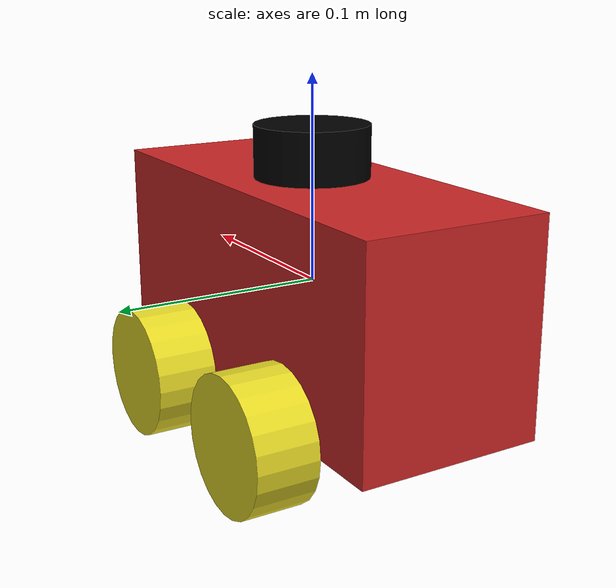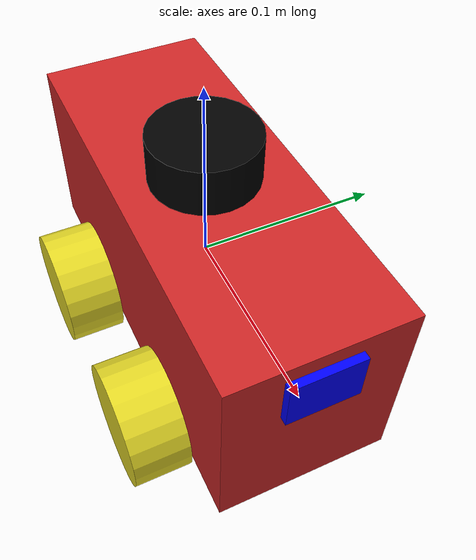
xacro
<?xml version="1.0"?>
<robot name="differential_drive_robot" xmlns:xacro="https://www.ros.org/wiki/xacro">

  <!-- BODY DIMENSIONS -->
  <xacro:property name="body_link_x_dim" value="0.228"/>
  <xacro:property name="body_link_y_dim" value="0.090"/>
  <xacro:property name="body_link_z_dim" value="0.10215"/>

  <!-- WHEEL DIMENSIONS -->
  <xacro:property name="wheel_link_radius" value="0.0325"/>
  <xacro:property name="wheel_link_length" value="0.030"/>

  <!-- REAL WHEEL SPACING -->
  <xacro:property name="wheel_track" value="0.120"/>
  <xacro:property name="wheel_base" value="0.100"/>

  <!-- OLD-STYLE BODY/WHEEL RELATION -->
  <xacro:property name="wheel_link_z_location" value="-0.051"/>

  <!-- MASS -->
  <xacro:property name="robot_total_mass" value="2.0"/>
  <xacro:property name="wheel_mass" value="0.15"/>
  <xacro:property name="body_mass" value="${robot_total_mass - 4.0*wheel_mass}"/>

  <!-- OFFSETS -->
  <xacro:property name="wheel_x_offset" value="${wheel_base/2.0}"/>
  <xacro:property name="wheel_y_offset" value="${wheel_track/2.0}"/>

  <!-- BODY INERTIA -->
  <xacro:property name="body_ixx"
                  value="${(1.0/12.0)*body_mass*(body_link_y_dim*body_link_y_dim + body_link_z_dim*body_link_z_dim)}"/>
  <xacro:property name="body_iyy"
                  value="${(1.0/12.0)*body_mass*(body_link_x_dim*body_link_x_dim + body_link_z_dim*body_link_z_dim)}"/>
  <xacro:property name="body_izz"
                  value="${(1.0/12.0)*body_mass*(body_link_x_dim*body_link_x_dim + body_link_y_dim*body_link_y_dim)}"/>

  <!-- WHEEL INERTIA -->
  <xacro:property name="Iz_wheel"
                  value="${0.5*wheel_mass*wheel_link_radius*wheel_link_radius}"/>
  <xacro:property name="I_wheel"
                  value="${(1.0/12.0)*wheel_mass*(3.0*wheel_link_radius*wheel_link_radius + wheel_link_length*wheel_link_length)}"/>

  <xacro:macro name="inertia_wheel">
    <inertial>
      <origin rpy="0 0 0" xyz="0 0 0"/>
      <mass value="${wheel_mass}"/>
      <inertia ixx="${I_wheel}" ixy="0.0" ixz="0.0"
               iyy="${I_wheel}" iyz="0.0" izz="${Iz_wheel}" />
    </inertial>
  </xacro:macro>

  <!-- Includes -->
  <xacro:include filename="$(find mobile_robot)/model/robot.gazebo" />
  <xacro:include filename="$(find mobile_robot)/model/lidar.xacro" />
  <xacro:include filename="$(find mobile_robot)/model/camera.xacro" />

  <!-- Base footprint -->
  <link name="base_footprint"/>

  <joint name="base_footprint_joint" type="fixed">
    <parent link="base_footprint"/>
    <child link="body_link"/>
  </joint>

  <!-- Main chassis body -->
  <link name="body_link">
    <visual>
      <geometry>
        <box size="${body_link_x_dim} ${body_link_y_dim} ${body_link_z_dim}" />
      </geometry>
      <origin rpy="0 0 0" xyz="0 0 0"/>
    </visual>

    <collision>
      <geometry>
        <box size="${body_link_x_dim} ${body_link_y_dim} ${body_link_z_dim}" />
      </geometry>
      <origin rpy="0 0 0" xyz="0 0 0"/>
    </collision>

    <inertial>
      <origin rpy="0 0 0" xyz="0 0 0"/>
      <mass value="${body_mass}" />
      <inertia
        ixx="${body_ixx}"
        ixy="0.0"
        ixz="0.0"
        iyy="${body_iyy}"
        iyz="0.0"
        izz="${body_izz}"/>
    </inertial>
  </link>

  <!-- Rear right -->
  <joint name="wheel1_joint" type="continuous">
    <parent link="body_link" />
    <child link="wheel1_link" />
    <origin xyz="${-wheel_x_offset} ${-wheel_y_offset} ${wheel_link_z_location}" rpy="0 0 0" />
    <axis xyz="0 1 0"/>
    <limit effort="1000" velocity="1000"/>
    <dynamics damping="1.0" friction="1.0"/>
  </joint>

  <link name="wheel1_link">
    <visual>
      <origin rpy="1.570795 0 0" xyz="0 0 0"/>
      <geometry>
        <cylinder length="${wheel_link_length}" radius="${wheel_link_radius}"/>
      </geometry>
    </visual>
    <collision>
      <origin rpy="1.570795 0 0" xyz="0 0 0"/>
      <geometry>
        <cylinder length="${wheel_link_length}" radius="${wheel_link_radius}"/>
      </geometry>
    </collision>
    <xacro:inertia_wheel />
  </link>

  <!-- Rear left -->
  <joint name="wheel2_joint" type="continuous">
    <parent link="body_link" />
    <child link="wheel2_link" />
    <origin xyz="${-wheel_x_offset} ${wheel_y_offset} ${wheel_link_z_location}" rpy="0 0 0" />
    <axis xyz="0 1 0"/>
    <limit effort="1000" velocity="1000"/>
    <dynamics damping="1.0" friction="1.0"/>
  </joint>

  <link name="wheel2_link">
    <visual>
      <origin rpy="1.570795 0 0" xyz="0 0 0"/>
      <geometry>
        <cylinder length="${wheel_link_length}" radius="${wheel_link_radius}"/>
      </geometry>
    </visual>
    <collision>
      <origin rpy="1.570795 0 0" xyz="0 0 0"/>
      <geometry>
        <cylinder length="${wheel_link_length}" radius="${wheel_link_radius}"/>
      </geometry>
    </collision>
    <xacro:inertia_wheel />
  </link>

  <!-- Front right -->
  <joint name="wheel3_joint" type="continuous">
    <parent link="body_link" />
    <child link="wheel3_link" />
    <origin xyz="${wheel_x_offset} ${-wheel_y_offset} ${wheel_link_z_location}" rpy="0 0 0" />
    <axis xyz="0 1 0"/>
    <limit effort="1000" velocity="1000"/>
    <dynamics damping="1.0" friction="1.0"/>
  </joint>

  <link name="wheel3_link">
    <visual>
      <origin rpy="1.570795 0 0" xyz="0 0 0"/>
      <geometry>
        <cylinder length="${wheel_link_length}" radius="${wheel_link_radius}"/>
      </geometry>
    </visual>
    <collision>
      <origin rpy="1.570795 0 0" xyz="0 0 0"/>
      <geometry>
        <cylinder length="${wheel_link_length}" radius="${wheel_link_radius}"/>
      </geometry>
    </collision>
    <xacro:inertia_wheel />
  </link>

  <!-- Front left -->
  <joint name="wheel4_joint" type="continuous">
    <parent link="body_link" />
    <child link="wheel4_link" />
    <origin xyz="${wheel_x_offset} ${wheel_y_offset} ${wheel_link_z_location}" rpy="0 0 0" />
    <axis xyz="0 1 0"/>
    <limit effort="1000" velocity="1000"/>
    <dynamics damping="1.0" friction="1.0"/>
  </joint>

  <link name="wheel4_link">
    <visual>
      <origin rpy="1.570795 0 0" xyz="0 0 0"/>
      <geometry>
        <cylinder length="${wheel_link_length}" radius="${wheel_link_radius}"/>
      </geometry>
    </visual>
    <collision>
      <origin rpy="1.570795 0 0" xyz="0 0 0"/>
      <geometry>
        <cylinder length="${wheel_link_length}" radius="${wheel_link_radius}"/>
      </geometry>
    </collision>
    <xacro:inertia_wheel />
  </link>

</robot>

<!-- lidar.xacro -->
<robot xmlns:xacro="http://www.ros.org/wiki/xacro">

  <joint name="lidar_joint" type="fixed">
    <parent link="body_link"/>
    <child link="lidar_link"/>
    <origin xyz="0 0 0.0638" rpy="0 0 0"/>
  </joint>

  <link name="lidar_link">
    <visual>
      <geometry>
        <cylinder radius="0.028" length="0.0254"/>
      </geometry>
      <material name="Black">
        <color rgba="0 0 0 1"/>
      </material>
    </visual>
    <collision>
      <geometry>
        <cylinder radius="0.028" length="0.0254"/>
      </geometry>
    </collision>
    <inertial>
      <origin xyz="0 0 0" rpy="0 0 0"/>
      <mass value="0.11"/>
      <inertia ixx="0.00005" ixy="0" ixz="0" iyy="0.00005" iyz="0" izz="0.00005"/>
    </inertial>
  </link>

</robot>

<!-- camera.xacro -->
<robot xmlns:xacro="http://www.ros.org/wiki/xacro">

  <joint name="camera_joint" type="fixed">
    <parent link="body_link"/>
    <child link="camera_link"/>
    <origin xyz="0.09 0 0.03" rpy="0 0 0"/>
  </joint>

  <link name="camera_link">
    <visual>
      <geometry>
        <box size="0.056 0.036 0.0255"/>
      </geometry>
      <material name="Blue">
        <color rgba="0 0 1 1"/>
      </material>
    </visual>
    <collision>
      <geometry>
        <box size="0.056 0.036 0.0255"/>
      </geometry>
    </collision>
    <inertial>
      <origin xyz="0 0 0" rpy="0 0 0"/>
      <mass value="0.072"/>
      <inertia ixx="0.00002" ixy="0" ixz="0" iyy="0.00002" iyz="0" izz="0.00002"/>
    </inertial>
  </link>

  <joint name="camera_optical_joint" type="fixed">
    <parent link="camera_link"/>
    <child link="camera_link_optical"/>
    <origin xyz="0 0 0" rpy="-1.5708 0 -1.5708"/>
  </joint>

  <link name="camera_link_optical"/>

</robot>
